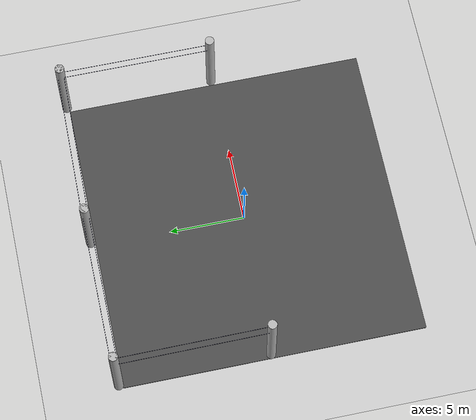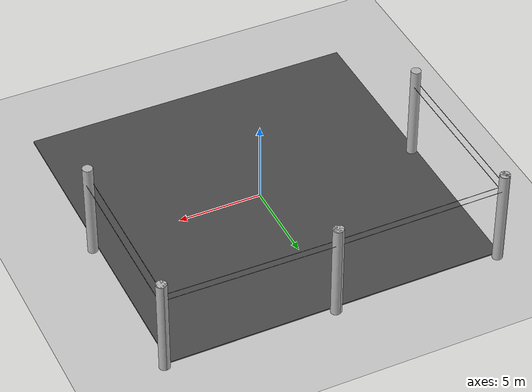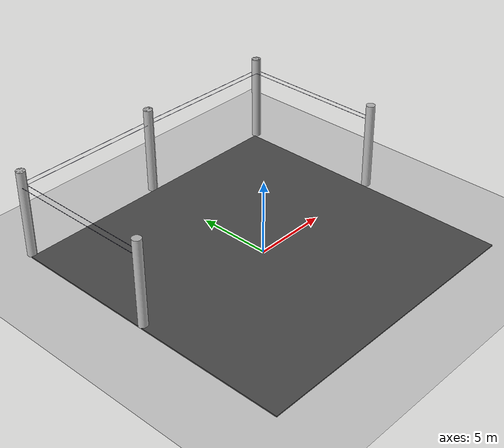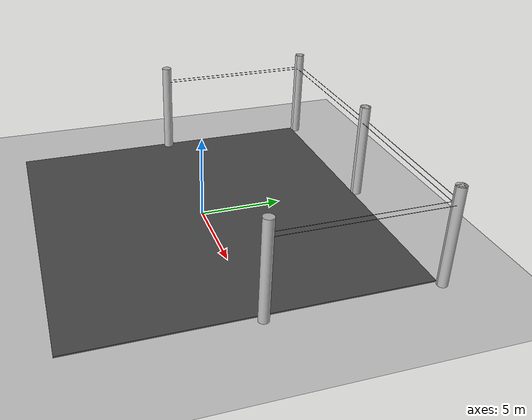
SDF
<sdf version="1.7">
 <world name="default">
  <model name="ground_plane">
   <static>1</static>
   <link name="link">
    <collision name="collision">
     <geometry><plane><normal>0 0 1</normal><size>100 100</size></plane></geometry>
     <surface><friction><ode><mu>100</mu><mu2>50</mu2></ode></friction></surface>
    </collision>
    <visual name="visual">
     <cast_shadows>0</cast_shadows>
     <geometry><plane><normal>0 0 1</normal><size>100 100</size></plane></geometry>
     <material>
      <script><uri>file://media/materials/scripts/gazebo.material</uri><name>Gazebo/Grey</name></script>
     </material>
    </visual>
   </link>
  </model>
  <model name="asphalt_plane">
   <pose>0.02662 0 0 0 -0 0</pose>
   <static>1</static>
   <link name="link">
    <collision name="collision"><geometry><box><size>20 20 0.1</size></box></geometry></collision>
    <visual name="visual">
     <cast_shadows>0</cast_shadows>
     <geometry><box><size>20 20 0.1</size></box></geometry>
     <material>
      <script>
       <uri>model://asphalt_plane/materials/scripts</uri>
       <uri>model://asphalt_plane/materials/textures</uri>
       <name>vrc/asphalt</name>
      </script>
     </material>
    </visual>
   </link>
  </model>
  <model name="telegraph_pole_0_clone">
   <link name="pole_00">
    <pose>0 -5 3 0 -0 0</pose>
    <inertial>
     <inertia><ixx>1</ixx><ixy>0</ixy><ixz>0</ixz><iyy>1</iyy><iyz>0</iyz><izz>1</izz></inertia>
     <mass>1</mass>
    </inertial>
    <visual name="visual">
     <geometry><cylinder><radius>0.3</radius><length>6</length></cylinder></geometry>
     <material><script><uri>__default__</uri><name>__default__</name></script></material>
    </visual>
    <collision name="collision">
     <geometry><cylinder><radius>0.3</radius><length>6</length></cylinder></geometry>
     <surface>
      <friction>
       <ode><mu>1</mu><mu2>1</mu2><fdir1>0 0 0</fdir1><slip1>0</slip1><slip2>0</slip2></ode>
       <torsional>
        <coefficient>1</coefficient>
        <patch_radius>0</patch_radius>
        <surface_radius>0</surface_radius>
        <use_patch_radius>1</use_patch_radius>
        <ode><slip>0</slip></ode>
       </torsional>
      </friction>
      <bounce><restitution_coefficient>0</restitution_coefficient><threshold>1e+06</threshold></bounce>
      <contact>
       <collide_without_contact>0</collide_without_contact>
       <collide_without_contact_bitmask>1</collide_without_contact_bitmask>
       <collide_bitmask>1</collide_bitmask>
       <ode>
        <soft_cfm>0</soft_cfm>
        <soft_erp>0.2</soft_erp>
        <kp>1e+13</kp>
        <kd>1</kd>
        <max_vel>0.01</max_vel>
        <min_depth>0</min_depth>
       </ode>
       <bullet>
        <split_impulse>1</split_impulse>
        <split_impulse_penetration_threshold>-0.01</split_impulse_penetration_threshold>
        <soft_cfm>0</soft_cfm>
        <soft_erp>0.2</soft_erp>
        <kp>1e+13</kp>
        <kd>1</kd>
       </bullet>
      </contact>
     </surface>
    </collision>
   </link>
   <link name="line00_00_01">
    <pose>-0.2 0 5 1.57 -0 0</pose>
    <inertial>
     <inertia><ixx>1</ixx><ixy>0</ixy><ixz>0</ixz><iyy>1</iyy><iyz>0</iyz><izz>1</izz></inertia>
     <mass>1</mass>
    </inertial>
    <visual name="visual">
     <geometry><cylinder><radius>0.01</radius><length>10</length></cylinder></geometry>
     <material>
      <ambient>0.1 0.1 0.1 1</ambient>
      <diffuse>0.1 0.1 0.2 1</diffuse>
      <specular>0 0 0 0</specular>
      <emissive>0 0 0 1</emissive>
      <shader type="pixel"/>
      <script><name>ModelPreview_5::line00_00_01::visual_MATERIAL_</name><uri>__default__</uri></script>
     </material>
    </visual>
    <collision name="collision">
     <geometry><cylinder><radius>0.01</radius><length>10</length></cylinder></geometry>
     <surface>
      <friction>
       <ode><mu>1</mu><mu2>1</mu2><fdir1>0 0 0</fdir1><slip1>0</slip1><slip2>0</slip2></ode>
       <torsional>
        <coefficient>1</coefficient>
        <patch_radius>0</patch_radius>
        <surface_radius>0</surface_radius>
        <use_patch_radius>1</use_patch_radius>
        <ode><slip>0</slip></ode>
       </torsional>
      </friction>
      <bounce><restitution_coefficient>0</restitution_coefficient><threshold>1e+06</threshold></bounce>
      <contact>
       <collide_without_contact>0</collide_without_contact>
       <collide_without_contact_bitmask>1</collide_without_contact_bitmask>
       <collide_bitmask>1</collide_bitmask>
       <ode>
        <soft_cfm>0</soft_cfm>
        <soft_erp>0.2</soft_erp>
        <kp>1e+13</kp>
        <kd>1</kd>
        <max_vel>0.01</max_vel>
        <min_depth>0</min_depth>
       </ode>
       <bullet>
        <split_impulse>1</split_impulse>
        <split_impulse_penetration_threshold>-0.01</split_impulse_penetration_threshold>
        <soft_cfm>0</soft_cfm>
        <soft_erp>0.2</soft_erp>
        <kp>1e+13</kp>
        <kd>1</kd>
       </bullet>
      </contact>
     </surface>
    </collision>
   </link>
   <link name="line01_00_01">
    <pose>0.2 0 5 1.57 -0 0</pose>
    <inertial>
     <inertia><ixx>1</ixx><ixy>0</ixy><ixz>0</ixz><iyy>1</iyy><iyz>0</iyz><izz>1</izz></inertia>
     <mass>1</mass>
    </inertial>
    <visual name="visual">
     <geometry><cylinder><radius>0.01</radius><length>10</length></cylinder></geometry>
     <material>
      <ambient>0.1 0.1 0.1 1</ambient>
      <diffuse>0.1 0.1 0.2 1</diffuse>
      <specular>0 0 0 0</specular>
      <emissive>0 0 0 1</emissive>
      <shader type="pixel"/>
      <script><name>ModelPreview_5::line01_00_01::visual_MATERIAL_</name><uri>__default__</uri></script>
     </material>
    </visual>
    <collision name="collision">
     <geometry><cylinder><radius>0.01</radius><length>10</length></cylinder></geometry>
     <surface>
      <friction>
       <ode><mu>1</mu><mu2>1</mu2><fdir1>0 0 0</fdir1><slip1>0</slip1><slip2>0</slip2></ode>
       <torsional>
        <coefficient>1</coefficient>
        <patch_radius>0</patch_radius>
        <surface_radius>0</surface_radius>
        <use_patch_radius>1</use_patch_radius>
        <ode><slip>0</slip></ode>
       </torsional>
      </friction>
      <bounce><restitution_coefficient>0</restitution_coefficient><threshold>1e+06</threshold></bounce>
      <contact>
       <collide_without_contact>0</collide_without_contact>
       <collide_without_contact_bitmask>1</collide_without_contact_bitmask>
       <collide_bitmask>1</collide_bitmask>
       <ode>
        <soft_cfm>0</soft_cfm>
        <soft_erp>0.2</soft_erp>
        <kp>1e+13</kp>
        <kd>1</kd>
        <max_vel>0.01</max_vel>
        <min_depth>0</min_depth>
       </ode>
       <bullet>
        <split_impulse>1</split_impulse>
        <split_impulse_penetration_threshold>-0.01</split_impulse_penetration_threshold>
        <soft_cfm>0</soft_cfm>
        <soft_erp>0.2</soft_erp>
        <kp>1e+13</kp>
        <kd>1</kd>
       </bullet>
      </contact>
     </surface>
    </collision>
   </link>
   <link name="pole_01">
    <pose>0 5 3 0 -0 0</pose>
    <inertial>
     <inertia><ixx>1</ixx><ixy>0</ixy><ixz>0</ixz><iyy>1</iyy><iyz>0</iyz><izz>1</izz></inertia>
     <mass>1</mass>
    </inertial>
    <visual name="visual">
     <geometry><cylinder><radius>0.3</radius><length>6</length></cylinder></geometry>
     <material><script><uri>__default__</uri><name>__default__</name></script></material>
    </visual>
    <collision name="collision">
     <geometry><cylinder><radius>0.3</radius><length>6</length></cylinder></geometry>
     <surface>
      <friction>
       <ode><mu>1</mu><mu2>1</mu2><fdir1>0 0 0</fdir1><slip1>0</slip1><slip2>0</slip2></ode>
       <torsional>
        <coefficient>1</coefficient>
        <patch_radius>0</patch_radius>
        <surface_radius>0</surface_radius>
        <use_patch_radius>1</use_patch_radius>
        <ode><slip>0</slip></ode>
       </torsional>
      </friction>
      <bounce><restitution_coefficient>0</restitution_coefficient><threshold>1e+06</threshold></bounce>
      <contact>
       <collide_without_contact>0</collide_without_contact>
       <collide_without_contact_bitmask>1</collide_without_contact_bitmask>
       <collide_bitmask>1</collide_bitmask>
       <ode>
        <soft_cfm>0</soft_cfm>
        <soft_erp>0.2</soft_erp>
        <kp>1e+13</kp>
        <kd>1</kd>
        <max_vel>0.01</max_vel>
        <min_depth>0</min_depth>
       </ode>
       <bullet>
        <split_impulse>1</split_impulse>
        <split_impulse_penetration_threshold>-0.01</split_impulse_penetration_threshold>
        <soft_cfm>0</soft_cfm>
        <soft_erp>0.2</soft_erp>
        <kp>1e+13</kp>
        <kd>1</kd>
       </bullet>
      </contact>
     </surface>
    </collision>
   </link>
   <joint name="line00_pole_00" type="fixed">
    <parent>pole_00</parent>
    <child>line00_00_01</child>
    <pose>0 0 5 0 -0 0</pose>
    <physics>
     <ode><limit><cfm>0</cfm><erp>0.2</erp></limit><suspension><cfm>0</cfm><erp>0.2</erp></suspension></ode>
    </physics>
   </joint>
   <joint name="line00_pole_01" type="fixed">
    <parent>pole_01</parent>
    <child>line00_00_01</child>
    <pose>0 0 -5 0 -0 0</pose>
    <physics>
     <ode><limit><cfm>0</cfm><erp>0.2</erp></limit><suspension><cfm>0</cfm><erp>0.2</erp></suspension></ode>
    </physics>
   </joint>
   <joint name="line01_pole_00" type="fixed">
    <parent>pole_00</parent>
    <child>line01_00_01</child>
    <pose>0 0 5 0 -0 0</pose>
    <physics>
     <ode><limit><cfm>0</cfm><erp>0.2</erp></limit><suspension><cfm>0</cfm><erp>0.2</erp></suspension></ode>
    </physics>
   </joint>
   <joint name="line01_pole_01" type="fixed">
    <parent>pole_01</parent>
    <child>line01_00_01</child>
    <pose>0 0 -5 0 -0 0</pose>
    <physics>
     <ode><limit><cfm>0</cfm><erp>0.2</erp></limit><suspension><cfm>0</cfm><erp>0.2</erp></suspension></ode>
    </physics>
   </joint>
   <static>1</static>
   <pose>-9.72507 5.25235 0 0 -0 0.004262</pose>
  </model>
  <model name="telegraph_pole_1">
   <link name="pole_00">
    <pose>0 -5 3 0 -0 0</pose>
    <inertial>
     <inertia><ixx>1</ixx><ixy>0</ixy><ixz>0</ixz><iyy>1</iyy><iyz>0</iyz><izz>1</izz></inertia>
     <mass>1</mass>
    </inertial>
    <visual name="visual">
     <geometry><cylinder><radius>0.3</radius><length>6</length></cylinder></geometry>
     <material><script><uri>__default__</uri><name>__default__</name></script></material>
    </visual>
    <collision name="collision">
     <geometry><cylinder><radius>0.3</radius><length>6</length></cylinder></geometry>
     <surface>
      <friction>
       <ode><mu>1</mu><mu2>1</mu2><fdir1>0 0 0</fdir1><slip1>0</slip1><slip2>0</slip2></ode>
       <torsional>
        <coefficient>1</coefficient>
        <patch_radius>0</patch_radius>
        <surface_radius>0</surface_radius>
        <use_patch_radius>1</use_patch_radius>
        <ode><slip>0</slip></ode>
       </torsional>
      </friction>
      <bounce><restitution_coefficient>0</restitution_coefficient><threshold>1e+06</threshold></bounce>
      <contact>
       <collide_without_contact>0</collide_without_contact>
       <collide_without_contact_bitmask>1</collide_without_contact_bitmask>
       <collide_bitmask>1</collide_bitmask>
       <ode>
        <soft_cfm>0</soft_cfm>
        <soft_erp>0.2</soft_erp>
        <kp>1e+13</kp>
        <kd>1</kd>
        <max_vel>0.01</max_vel>
        <min_depth>0</min_depth>
       </ode>
       <bullet>
        <split_impulse>1</split_impulse>
        <split_impulse_penetration_threshold>-0.01</split_impulse_penetration_threshold>
        <soft_cfm>0</soft_cfm>
        <soft_erp>0.2</soft_erp>
        <kp>1e+13</kp>
        <kd>1</kd>
       </bullet>
      </contact>
     </surface>
    </collision>
   </link>
   <link name="line00_00_01">
    <pose>-0.2 0 5 1.57 -0 0</pose>
    <inertial>
     <inertia><ixx>1</ixx><ixy>0</ixy><ixz>0</ixz><iyy>1</iyy><iyz>0</iyz><izz>1</izz></inertia>
     <mass>1</mass>
    </inertial>
    <visual name="visual">
     <geometry><cylinder><radius>0.01</radius><length>10</length></cylinder></geometry>
     <material>
      <ambient>0.1 0.1 0.1 1</ambient>
      <diffuse>0.1 0.1 0.2 1</diffuse>
      <specular>0 0 0 0</specular>
      <emissive>0 0 0 1</emissive>
      <shader type="pixel"/>
      <script><name>ModelPreview_5::line00_00_01::visual_MATERIAL_</name><uri>__default__</uri></script>
     </material>
    </visual>
    <collision name="collision">
     <geometry><cylinder><radius>0.01</radius><length>10</length></cylinder></geometry>
     <surface>
      <friction>
       <ode><mu>1</mu><mu2>1</mu2><fdir1>0 0 0</fdir1><slip1>0</slip1><slip2>0</slip2></ode>
       <torsional>
        <coefficient>1</coefficient>
        <patch_radius>0</patch_radius>
        <surface_radius>0</surface_radius>
        <use_patch_radius>1</use_patch_radius>
        <ode><slip>0</slip></ode>
       </torsional>
      </friction>
      <bounce><restitution_coefficient>0</restitution_coefficient><threshold>1e+06</threshold></bounce>
      <contact>
       <collide_without_contact>0</collide_without_contact>
       <collide_without_contact_bitmask>1</collide_without_contact_bitmask>
       <collide_bitmask>1</collide_bitmask>
       <ode>
        <soft_cfm>0</soft_cfm>
        <soft_erp>0.2</soft_erp>
        <kp>1e+13</kp>
        <kd>1</kd>
        <max_vel>0.01</max_vel>
        <min_depth>0</min_depth>
       </ode>
       <bullet>
        <split_impulse>1</split_impulse>
        <split_impulse_penetration_threshold>-0.01</split_impulse_penetration_threshold>
        <soft_cfm>0</soft_cfm>
        <soft_erp>0.2</soft_erp>
        <kp>1e+13</kp>
        <kd>1</kd>
       </bullet>
      </contact>
     </surface>
    </collision>
   </link>
   <link name="line01_00_01">
    <pose>0.2 0 5 1.57 -0 0</pose>
    <inertial>
     <inertia><ixx>1</ixx><ixy>0</ixy><ixz>0</ixz><iyy>1</iyy><iyz>0</iyz><izz>1</izz></inertia>
     <mass>1</mass>
    </inertial>
    <visual name="visual">
     <geometry><cylinder><radius>0.01</radius><length>10</length></cylinder></geometry>
     <material>
      <ambient>0.1 0.1 0.1 1</ambient>
      <diffuse>0.1 0.1 0.2 1</diffuse>
      <specular>0 0 0 0</specular>
      <emissive>0 0 0 1</emissive>
      <shader type="pixel"/>
      <script><name>ModelPreview_5::line01_00_01::visual_MATERIAL_</name><uri>__default__</uri></script>
     </material>
    </visual>
    <collision name="collision">
     <geometry><cylinder><radius>0.01</radius><length>10</length></cylinder></geometry>
     <surface>
      <friction>
       <ode><mu>1</mu><mu2>1</mu2><fdir1>0 0 0</fdir1><slip1>0</slip1><slip2>0</slip2></ode>
       <torsional>
        <coefficient>1</coefficient>
        <patch_radius>0</patch_radius>
        <surface_radius>0</surface_radius>
        <use_patch_radius>1</use_patch_radius>
        <ode><slip>0</slip></ode>
       </torsional>
      </friction>
      <bounce><restitution_coefficient>0</restitution_coefficient><threshold>1e+06</threshold></bounce>
      <contact>
       <collide_without_contact>0</collide_without_contact>
       <collide_without_contact_bitmask>1</collide_without_contact_bitmask>
       <collide_bitmask>1</collide_bitmask>
       <ode>
        <soft_cfm>0</soft_cfm>
        <soft_erp>0.2</soft_erp>
        <kp>1e+13</kp>
        <kd>1</kd>
        <max_vel>0.01</max_vel>
        <min_depth>0</min_depth>
       </ode>
       <bullet>
        <split_impulse>1</split_impulse>
        <split_impulse_penetration_threshold>-0.01</split_impulse_penetration_threshold>
        <soft_cfm>0</soft_cfm>
        <soft_erp>0.2</soft_erp>
        <kp>1e+13</kp>
        <kd>1</kd>
       </bullet>
      </contact>
     </surface>
    </collision>
   </link>
   <link name="pole_01">
    <pose>0 5 3 0 -0 0</pose>
    <inertial>
     <inertia><ixx>1</ixx><ixy>0</ixy><ixz>0</ixz><iyy>1</iyy><iyz>0</iyz><izz>1</izz></inertia>
     <mass>1</mass>
    </inertial>
    <visual name="visual">
     <geometry><cylinder><radius>0.3</radius><length>6</length></cylinder></geometry>
     <material><script><uri>__default__</uri><name>__default__</name></script></material>
    </visual>
    <collision name="collision">
     <geometry><cylinder><radius>0.3</radius><length>6</length></cylinder></geometry>
     <surface>
      <friction>
       <ode><mu>1</mu><mu2>1</mu2><fdir1>0 0 0</fdir1><slip1>0</slip1><slip2>0</slip2></ode>
       <torsional>
        <coefficient>1</coefficient>
        <patch_radius>0</patch_radius>
        <surface_radius>0</surface_radius>
        <use_patch_radius>1</use_patch_radius>
        <ode><slip>0</slip></ode>
       </torsional>
      </friction>
      <bounce><restitution_coefficient>0</restitution_coefficient><threshold>1e+06</threshold></bounce>
      <contact>
       <collide_without_contact>0</collide_without_contact>
       <collide_without_contact_bitmask>1</collide_without_contact_bitmask>
       <collide_bitmask>1</collide_bitmask>
       <ode>
        <soft_cfm>0</soft_cfm>
        <soft_erp>0.2</soft_erp>
        <kp>1e+13</kp>
        <kd>1</kd>
        <max_vel>0.01</max_vel>
        <min_depth>0</min_depth>
       </ode>
       <bullet>
        <split_impulse>1</split_impulse>
        <split_impulse_penetration_threshold>-0.01</split_impulse_penetration_threshold>
        <soft_cfm>0</soft_cfm>
        <soft_erp>0.2</soft_erp>
        <kp>1e+13</kp>
        <kd>1</kd>
       </bullet>
      </contact>
     </surface>
    </collision>
   </link>
   <joint name="line00_pole_00" type="fixed">
    <parent>pole_00</parent>
    <child>line00_00_01</child>
    <pose>0 0 5 0 -0 0</pose>
    <physics>
     <ode><limit><cfm>0</cfm><erp>0.2</erp></limit><suspension><cfm>0</cfm><erp>0.2</erp></suspension></ode>
    </physics>
   </joint>
   <joint name="line00_pole_01" type="fixed">
    <parent>pole_01</parent>
    <child>line00_00_01</child>
    <pose>0 0 -5 0 -0 0</pose>
    <physics>
     <ode><limit><cfm>0</cfm><erp>0.2</erp></limit><suspension><cfm>0</cfm><erp>0.2</erp></suspension></ode>
    </physics>
   </joint>
   <joint name="line01_pole_00" type="fixed">
    <parent>pole_00</parent>
    <child>line01_00_01</child>
    <pose>0 0 5 0 -0 0</pose>
    <physics>
     <ode><limit><cfm>0</cfm><erp>0.2</erp></limit><suspension><cfm>0</cfm><erp>0.2</erp></suspension></ode>
    </physics>
   </joint>
   <joint name="line01_pole_01" type="fixed">
    <parent>pole_01</parent>
    <child>line01_00_01</child>
    <pose>0 0 -5 0 -0 0</pose>
    <physics>
     <ode><limit><cfm>0</cfm><erp>0.2</erp></limit><suspension><cfm>0</cfm><erp>0.2</erp></suspension></ode>
    </physics>
   </joint>
   <static>1</static>
   <pose>-4.72708 10.2724 0 0 0 -1.56915</pose>
  </model>
  <model name="telegraph_pole_1_clone">
   <link name="pole_00">
    <pose>0 -5 3 0 -0 0</pose>
    <inertial>
     <inertia><ixx>1</ixx><ixy>0</ixy><ixz>0</ixz><iyy>1</iyy><iyz>0</iyz><izz>1</izz></inertia>
     <mass>1</mass>
    </inertial>
    <visual name="visual">
     <geometry><cylinder><radius>0.3</radius><length>6</length></cylinder></geometry>
     <material><script><uri>__default__</uri><name>__default__</name></script></material>
    </visual>
    <collision name="collision">
     <geometry><cylinder><radius>0.3</radius><length>6</length></cylinder></geometry>
     <surface>
      <friction>
       <ode><mu>1</mu><mu2>1</mu2><fdir1>0 0 0</fdir1><slip1>0</slip1><slip2>0</slip2></ode>
       <torsional>
        <coefficient>1</coefficient>
        <patch_radius>0</patch_radius>
        <surface_radius>0</surface_radius>
        <use_patch_radius>1</use_patch_radius>
        <ode><slip>0</slip></ode>
       </torsional>
      </friction>
      <bounce><restitution_coefficient>0</restitution_coefficient><threshold>1e+06</threshold></bounce>
      <contact>
       <collide_without_contact>0</collide_without_contact>
       <collide_without_contact_bitmask>1</collide_without_contact_bitmask>
       <collide_bitmask>1</collide_bitmask>
       <ode>
        <soft_cfm>0</soft_cfm>
        <soft_erp>0.2</soft_erp>
        <kp>1e+13</kp>
        <kd>1</kd>
        <max_vel>0.01</max_vel>
        <min_depth>0</min_depth>
       </ode>
       <bullet>
        <split_impulse>1</split_impulse>
        <split_impulse_penetration_threshold>-0.01</split_impulse_penetration_threshold>
        <soft_cfm>0</soft_cfm>
        <soft_erp>0.2</soft_erp>
        <kp>1e+13</kp>
        <kd>1</kd>
       </bullet>
      </contact>
     </surface>
    </collision>
   </link>
   <link name="line00_00_01">
    <pose>-0.2 0 5 1.57 -0 0</pose>
    <inertial>
     <inertia><ixx>1</ixx><ixy>0</ixy><ixz>0</ixz><iyy>1</iyy><iyz>0</iyz><izz>1</izz></inertia>
     <mass>1</mass>
    </inertial>
    <visual name="visual">
     <geometry><cylinder><radius>0.01</radius><length>10</length></cylinder></geometry>
     <material>
      <ambient>0.1 0.1 0.1 1</ambient>
      <diffuse>0.1 0.1 0.2 1</diffuse>
      <specular>0 0 0 0</specular>
      <emissive>0 0 0 1</emissive>
      <shader type="pixel"/>
      <script><name>ModelPreview_5::line00_00_01::visual_MATERIAL_</name><uri>__default__</uri></script>
     </material>
    </visual>
    <collision name="collision">
     <geometry><cylinder><radius>0.01</radius><length>10</length></cylinder></geometry>
     <surface>
      <friction>
       <ode><mu>1</mu><mu2>1</mu2><fdir1>0 0 0</fdir1><slip1>0</slip1><slip2>0</slip2></ode>
       <torsional>
        <coefficient>1</coefficient>
        <patch_radius>0</patch_radius>
        <surface_radius>0</surface_radius>
        <use_patch_radius>1</use_patch_radius>
        <ode><slip>0</slip></ode>
       </torsional>
      </friction>
      <bounce><restitution_coefficient>0</restitution_coefficient><threshold>1e+06</threshold></bounce>
      <contact>
       <collide_without_contact>0</collide_without_contact>
       <collide_without_contact_bitmask>1</collide_without_contact_bitmask>
       <collide_bitmask>1</collide_bitmask>
       <ode>
        <soft_cfm>0</soft_cfm>
        <soft_erp>0.2</soft_erp>
        <kp>1e+13</kp>
        <kd>1</kd>
        <max_vel>0.01</max_vel>
        <min_depth>0</min_depth>
       </ode>
       <bullet>
        <split_impulse>1</split_impulse>
        <split_impulse_penetration_threshold>-0.01</split_impulse_penetration_threshold>
        <soft_cfm>0</soft_cfm>
        <soft_erp>0.2</soft_erp>
        <kp>1e+13</kp>
        <kd>1</kd>
       </bullet>
      </contact>
     </surface>
    </collision>
   </link>
   <link name="line01_00_01">
    <pose>0.2 0 5 1.57 -0 0</pose>
    <inertial>
     <inertia><ixx>1</ixx><ixy>0</ixy><ixz>0</ixz><iyy>1</iyy><iyz>0</iyz><izz>1</izz></inertia>
     <mass>1</mass>
    </inertial>
    <visual name="visual">
     <geometry><cylinder><radius>0.01</radius><length>10</length></cylinder></geometry>
     <material>
      <ambient>0.1 0.1 0.1 1</ambient>
      <diffuse>0.1 0.1 0.2 1</diffuse>
      <specular>0 0 0 0</specular>
      <emissive>0 0 0 1</emissive>
      <shader type="pixel"/>
      <script><name>ModelPreview_5::line01_00_01::visual_MATERIAL_</name><uri>__default__</uri></script>
     </material>
    </visual>
    <collision name="collision">
     <geometry><cylinder><radius>0.01</radius><length>10</length></cylinder></geometry>
     <surface>
      <friction>
       <ode><mu>1</mu><mu2>1</mu2><fdir1>0 0 0</fdir1><slip1>0</slip1><slip2>0</slip2></ode>
       <torsional>
        <coefficient>1</coefficient>
        <patch_radius>0</patch_radius>
        <surface_radius>0</surface_radius>
        <use_patch_radius>1</use_patch_radius>
        <ode><slip>0</slip></ode>
       </torsional>
      </friction>
      <bounce><restitution_coefficient>0</restitution_coefficient><threshold>1e+06</threshold></bounce>
      <contact>
       <collide_without_contact>0</collide_without_contact>
       <collide_without_contact_bitmask>1</collide_without_contact_bitmask>
       <collide_bitmask>1</collide_bitmask>
       <ode>
        <soft_cfm>0</soft_cfm>
        <soft_erp>0.2</soft_erp>
        <kp>1e+13</kp>
        <kd>1</kd>
        <max_vel>0.01</max_vel>
        <min_depth>0</min_depth>
       </ode>
       <bullet>
        <split_impulse>1</split_impulse>
        <split_impulse_penetration_threshold>-0.01</split_impulse_penetration_threshold>
        <soft_cfm>0</soft_cfm>
        <soft_erp>0.2</soft_erp>
        <kp>1e+13</kp>
        <kd>1</kd>
       </bullet>
      </contact>
     </surface>
    </collision>
   </link>
   <link name="pole_01">
    <pose>0 5 3 0 -0 0</pose>
    <inertial>
     <inertia><ixx>1</ixx><ixy>0</ixy><ixz>0</ixz><iyy>1</iyy><iyz>0</iyz><izz>1</izz></inertia>
     <mass>1</mass>
    </inertial>
    <visual name="visual">
     <geometry><cylinder><radius>0.3</radius><length>6</length></cylinder></geometry>
     <material><script><uri>__default__</uri><name>__default__</name></script></material>
    </visual>
    <collision name="collision">
     <geometry><cylinder><radius>0.3</radius><length>6</length></cylinder></geometry>
     <surface>
      <friction>
       <ode><mu>1</mu><mu2>1</mu2><fdir1>0 0 0</fdir1><slip1>0</slip1><slip2>0</slip2></ode>
       <torsional>
        <coefficient>1</coefficient>
        <patch_radius>0</patch_radius>
        <surface_radius>0</surface_radius>
        <use_patch_radius>1</use_patch_radius>
        <ode><slip>0</slip></ode>
       </torsional>
      </friction>
      <bounce><restitution_coefficient>0</restitution_coefficient><threshold>1e+06</threshold></bounce>
      <contact>
       <collide_without_contact>0</collide_without_contact>
       <collide_without_contact_bitmask>1</collide_without_contact_bitmask>
       <collide_bitmask>1</collide_bitmask>
       <ode>
        <soft_cfm>0</soft_cfm>
        <soft_erp>0.2</soft_erp>
        <kp>1e+13</kp>
        <kd>1</kd>
        <max_vel>0.01</max_vel>
        <min_depth>0</min_depth>
       </ode>
       <bullet>
        <split_impulse>1</split_impulse>
        <split_impulse_penetration_threshold>-0.01</split_impulse_penetration_threshold>
        <soft_cfm>0</soft_cfm>
        <soft_erp>0.2</soft_erp>
        <kp>1e+13</kp>
        <kd>1</kd>
       </bullet>
      </contact>
     </surface>
    </collision>
   </link>
   <joint name="line00_pole_00" type="fixed">
    <parent>pole_00</parent>
    <child>line00_00_01</child>
    <pose>0 0 5 0 -0 0</pose>
    <physics>
     <ode><limit><cfm>0</cfm><erp>0.2</erp></limit><suspension><cfm>0</cfm><erp>0.2</erp></suspension></ode>
    </physics>
   </joint>
   <joint name="line00_pole_01" type="fixed">
    <parent>pole_01</parent>
    <child>line00_00_01</child>
    <pose>0 0 -5 0 -0 0</pose>
    <physics>
     <ode><limit><cfm>0</cfm><erp>0.2</erp></limit><suspension><cfm>0</cfm><erp>0.2</erp></suspension></ode>
    </physics>
   </joint>
   <joint name="line01_pole_00" type="fixed">
    <parent>pole_00</parent>
    <child>line01_00_01</child>
    <pose>0 0 5 0 -0 0</pose>
    <physics>
     <ode><limit><cfm>0</cfm><erp>0.2</erp></limit><suspension><cfm>0</cfm><erp>0.2</erp></suspension></ode>
    </physics>
   </joint>
   <joint name="line01_pole_01" type="fixed">
    <parent>pole_01</parent>
    <child>line01_00_01</child>
    <pose>0 0 -5 0 -0 0</pose>
    <physics>
     <ode><limit><cfm>0</cfm><erp>0.2</erp></limit><suspension><cfm>0</cfm><erp>0.2</erp></suspension></ode>
    </physics>
   </joint>
   <static>1</static>
   <pose>5.33077 10.2253 0 0 0 -1.58627</pose>
  </model>
  <model name="telegraph_pole_clone">
   <link name="pole_00">
    <pose>0 -5 3 0 -0 0</pose>
    <inertial>
     <inertia><ixx>1</ixx><ixy>0</ixy><ixz>0</ixz><iyy>1</iyy><iyz>0</iyz><izz>1</izz></inertia>
     <mass>1</mass>
    </inertial>
    <visual name="visual">
     <geometry><cylinder><radius>0.3</radius><length>6</length></cylinder></geometry>
     <material><script><uri>__default__</uri><name>__default__</name></script></material>
    </visual>
    <collision name="collision">
     <geometry><cylinder><radius>0.3</radius><length>6</length></cylinder></geometry>
     <surface>
      <friction>
       <ode><mu>1</mu><mu2>1</mu2><fdir1>0 0 0</fdir1><slip1>0</slip1><slip2>0</slip2></ode>
       <torsional>
        <coefficient>1</coefficient>
        <patch_radius>0</patch_radius>
        <surface_radius>0</surface_radius>
        <use_patch_radius>1</use_patch_radius>
        <ode><slip>0</slip></ode>
       </torsional>
      </friction>
      <bounce><restitution_coefficient>0</restitution_coefficient><threshold>1e+06</threshold></bounce>
      <contact>
       <collide_without_contact>0</collide_without_contact>
       <collide_without_contact_bitmask>1</collide_without_contact_bitmask>
       <collide_bitmask>1</collide_bitmask>
       <ode>
        <soft_cfm>0</soft_cfm>
        <soft_erp>0.2</soft_erp>
        <kp>1e+13</kp>
        <kd>1</kd>
        <max_vel>0.01</max_vel>
        <min_depth>0</min_depth>
       </ode>
       <bullet>
        <split_impulse>1</split_impulse>
        <split_impulse_penetration_threshold>-0.01</split_impulse_penetration_threshold>
        <soft_cfm>0</soft_cfm>
        <soft_erp>0.2</soft_erp>
        <kp>1e+13</kp>
        <kd>1</kd>
       </bullet>
      </contact>
     </surface>
    </collision>
   </link>
   <link name="line00_00_01">
    <pose>-0.2 0 5 1.57 -0 0</pose>
    <inertial>
     <inertia><ixx>1</ixx><ixy>0</ixy><ixz>0</ixz><iyy>1</iyy><iyz>0</iyz><izz>1</izz></inertia>
     <mass>1</mass>
    </inertial>
    <visual name="visual">
     <geometry><cylinder><radius>0.01</radius><length>10</length></cylinder></geometry>
     <material>
      <ambient>0.1 0.1 0.1 1</ambient>
      <diffuse>0.1 0.1 0.2 1</diffuse>
      <specular>0 0 0 0</specular>
      <emissive>0 0 0 1</emissive>
      <shader type="pixel"/>
      <script><name>ModelPreview_5::line00_00_01::visual_MATERIAL_</name><uri>__default__</uri></script>
     </material>
    </visual>
    <collision name="collision">
     <geometry><cylinder><radius>0.01</radius><length>10</length></cylinder></geometry>
     <surface>
      <friction>
       <ode><mu>1</mu><mu2>1</mu2><fdir1>0 0 0</fdir1><slip1>0</slip1><slip2>0</slip2></ode>
       <torsional>
        <coefficient>1</coefficient>
        <patch_radius>0</patch_radius>
        <surface_radius>0</surface_radius>
        <use_patch_radius>1</use_patch_radius>
        <ode><slip>0</slip></ode>
       </torsional>
      </friction>
      <bounce><restitution_coefficient>0</restitution_coefficient><threshold>1e+06</threshold></bounce>
      <contact>
       <collide_without_contact>0</collide_without_contact>
       <collide_without_contact_bitmask>1</collide_without_contact_bitmask>
       <collide_bitmask>1</collide_bitmask>
       <ode>
        <soft_cfm>0</soft_cfm>
        <soft_erp>0.2</soft_erp>
        <kp>1e+13</kp>
        <kd>1</kd>
        <max_vel>0.01</max_vel>
        <min_depth>0</min_depth>
       </ode>
       <bullet>
        <split_impulse>1</split_impulse>
        <split_impulse_penetration_threshold>-0.01</split_impulse_penetration_threshold>
        <soft_cfm>0</soft_cfm>
        <soft_erp>0.2</soft_erp>
        <kp>1e+13</kp>
        <kd>1</kd>
       </bullet>
      </contact>
     </surface>
    </collision>
   </link>
   <link name="line01_00_01">
    <pose>0.2 0 5 1.57 -0 0</pose>
    <inertial>
     <inertia><ixx>1</ixx><ixy>0</ixy><ixz>0</ixz><iyy>1</iyy><iyz>0</iyz><izz>1</izz></inertia>
     <mass>1</mass>
    </inertial>
    <visual name="visual">
     <geometry><cylinder><radius>0.01</radius><length>10</length></cylinder></geometry>
     <material>
      <ambient>0.1 0.1 0.1 1</ambient>
      <diffuse>0.1 0.1 0.2 1</diffuse>
      <specular>0 0 0 0</specular>
      <emissive>0 0 0 1</emissive>
      <shader type="pixel"/>
      <script><name>ModelPreview_5::line01_00_01::visual_MATERIAL_</name><uri>__default__</uri></script>
     </material>
    </visual>
    <collision name="collision">
     <geometry><cylinder><radius>0.01</radius><length>10</length></cylinder></geometry>
     <surface>
      <friction>
       <ode><mu>1</mu><mu2>1</mu2><fdir1>0 0 0</fdir1><slip1>0</slip1><slip2>0</slip2></ode>
       <torsional>
        <coefficient>1</coefficient>
        <patch_radius>0</patch_radius>
        <surface_radius>0</surface_radius>
        <use_patch_radius>1</use_patch_radius>
        <ode><slip>0</slip></ode>
       </torsional>
      </friction>
      <bounce><restitution_coefficient>0</restitution_coefficient><threshold>1e+06</threshold></bounce>
      <contact>
       <collide_without_contact>0</collide_without_contact>
       <collide_without_contact_bitmask>1</collide_without_contact_bitmask>
       <collide_bitmask>1</collide_bitmask>
       <ode>
        <soft_cfm>0</soft_cfm>
        <soft_erp>0.2</soft_erp>
        <kp>1e+13</kp>
        <kd>1</kd>
        <max_vel>0.01</max_vel>
        <min_depth>0</min_depth>
       </ode>
       <bullet>
        <split_impulse>1</split_impulse>
        <split_impulse_penetration_threshold>-0.01</split_impulse_penetration_threshold>
        <soft_cfm>0</soft_cfm>
        <soft_erp>0.2</soft_erp>
        <kp>1e+13</kp>
        <kd>1</kd>
       </bullet>
      </contact>
     </surface>
    </collision>
   </link>
   <link name="pole_01">
    <pose>0 5 3 0 -0 0</pose>
    <inertial>
     <inertia><ixx>1</ixx><ixy>0</ixy><ixz>0</ixz><iyy>1</iyy><iyz>0</iyz><izz>1</izz></inertia>
     <mass>1</mass>
    </inertial>
    <visual name="visual">
     <geometry><cylinder><radius>0.3</radius><length>6</length></cylinder></geometry>
     <material><script><uri>__default__</uri><name>__default__</name></script></material>
    </visual>
    <collision name="collision">
     <geometry><cylinder><radius>0.3</radius><length>6</length></cylinder></geometry>
     <surface>
      <friction>
       <ode><mu>1</mu><mu2>1</mu2><fdir1>0 0 0</fdir1><slip1>0</slip1><slip2>0</slip2></ode>
       <torsional>
        <coefficient>1</coefficient>
        <patch_radius>0</patch_radius>
        <surface_radius>0</surface_radius>
        <use_patch_radius>1</use_patch_radius>
        <ode><slip>0</slip></ode>
       </torsional>
      </friction>
      <bounce><restitution_coefficient>0</restitution_coefficient><threshold>1e+06</threshold></bounce>
      <contact>
       <collide_without_contact>0</collide_without_contact>
       <collide_without_contact_bitmask>1</collide_without_contact_bitmask>
       <collide_bitmask>1</collide_bitmask>
       <ode>
        <soft_cfm>0</soft_cfm>
        <soft_erp>0.2</soft_erp>
        <kp>1e+13</kp>
        <kd>1</kd>
        <max_vel>0.01</max_vel>
        <min_depth>0</min_depth>
       </ode>
       <bullet>
        <split_impulse>1</split_impulse>
        <split_impulse_penetration_threshold>-0.01</split_impulse_penetration_threshold>
        <soft_cfm>0</soft_cfm>
        <soft_erp>0.2</soft_erp>
        <kp>1e+13</kp>
        <kd>1</kd>
       </bullet>
      </contact>
     </surface>
    </collision>
   </link>
   <joint name="line00_pole_00" type="fixed">
    <parent>pole_00</parent>
    <child>line00_00_01</child>
    <pose>0 0 5 0 -0 0</pose>
    <physics>
     <ode><limit><cfm>0</cfm><erp>0.2</erp></limit><suspension><cfm>0</cfm><erp>0.2</erp></suspension></ode>
    </physics>
   </joint>
   <joint name="line00_pole_01" type="fixed">
    <parent>pole_01</parent>
    <child>line00_00_01</child>
    <pose>0 0 -5 0 -0 0</pose>
    <physics>
     <ode><limit><cfm>0</cfm><erp>0.2</erp></limit><suspension><cfm>0</cfm><erp>0.2</erp></suspension></ode>
    </physics>
   </joint>
   <joint name="line01_pole_00" type="fixed">
    <parent>pole_00</parent>
    <child>line01_00_01</child>
    <pose>0 0 5 0 -0 0</pose>
    <physics>
     <ode><limit><cfm>0</cfm><erp>0.2</erp></limit><suspension><cfm>0</cfm><erp>0.2</erp></suspension></ode>
    </physics>
   </joint>
   <joint name="line01_pole_01" type="fixed">
    <parent>pole_01</parent>
    <child>line01_00_01</child>
    <pose>0 0 -5 0 -0 0</pose>
    <physics>
     <ode><limit><cfm>0</cfm><erp>0.2</erp></limit><suspension><cfm>0</cfm><erp>0.2</erp></suspension></ode>
    </physics>
   </joint>
   <static>1</static>
   <pose>10.3597 5.14787 0 0 -0 0</pose>
  </model>
 </world>
</sdf>
